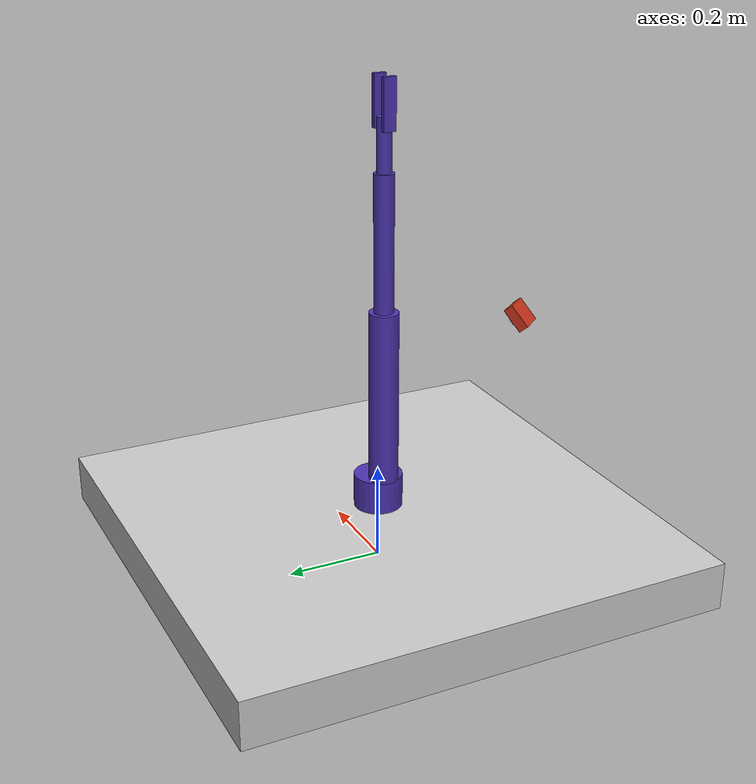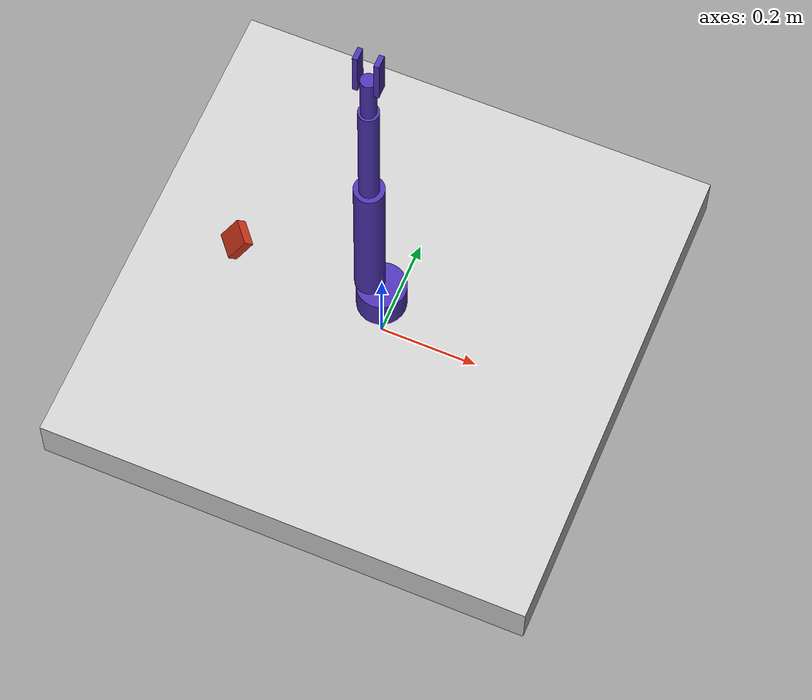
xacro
<?xml version="1.0"?>
<robot xmlns:xacro="http://www.ros.org/wiki/xacro" name="krowka">

<!-- FILES INCLUDED -->

    <xacro:include filename="0_utils/gazebo_ros_control.xacro"/>
    <xacro:include filename="1_base/base_link.xacro"/>
    <xacro:include filename="2_links/link_0.xacro"/>
    <xacro:include filename="2_links/link_1.xacro"/>
    <xacro:include filename="2_links/link_2.xacro"/>
    <xacro:include filename="2_links/link_3.xacro"/>
    <xacro:include filename="3_gripper/grip.xacro"/>
    <xacro:include filename="4_sensors/camera.xacro"/>

<!-- MODEL DEFINITION -->

    <xacro:base_link    name="base_link"/>

    <xacro:link_0   parent="base_link"
                    trans_x="0.000"
                    trans_y="0.000"
                    trans_z="0.120"
                    name="link_0"
                    low_limit="-3.14"
                    high_limit="3.14"
                    effort="10"
                    velocity="0.4"
                    damping="10"/>

    <xacro:link_1   parent="link_0"
                    trans_x="-0.025"
                    trans_y=" 0.000"
                    trans_z=" 0.070"
                    name="link_1"
                    low_limit="-1.9"
                    high_limit="2.0"
                    effort="10"
                    velocity="0.4"
                    damping="10"/>

    <xacro:link_2   parent="link_1"
                    trans_x="0.000"
                    trans_y="0.000"
                    trans_z="0.360"
                    name="link_2"
                    low_limit="-2.0"
                    high_limit="2.8"
                    effort="5"
                    velocity="0.4"
                    damping="5"/>

    <xacro:link_3   parent="link_2"
                    trans_x="0.000"
                    trans_y="0.000"
                    trans_z="0.2755"
                    name="link_3"
                    low_limit="-2.1"
                    high_limit="2.1"
                    effort="5"
                    velocity="0.4"
                    damping="3"/>

    <xacro:grip     parent="link_3"
                    trans_x="0.02"
                    trans_y="0.000"
                    trans_z="0.106"
                    name="grip_0"
                    low_limit="-0.2"
                    high_limit="0.5"
                    effort="10"
                    velocity="0.4"
                    damping="3"
                    axis="1"
                    rot_yaw="0.00"
                    no="0"/>

    <xacro:grip     parent="link_3"
                    trans_x="-0.02"
                    trans_y="0.000"
                    trans_z="0.106"
                    name="grip_1"
                    low_limit="-0.2"
                    high_limit="0.5"
                    effort="10"
                    velocity="0.4"
                    damping="3"
                    axis="-1"
                    rot_yaw="3.1416"
                    no="1"/>

    <xacro:camera_link  parent="link_0"
                    trans_x="-0.20"
                    trans_y="-0.20"
                    trans_z=" 0.450"
                    rot_roll="0.0"
                    rot_pitch="0.7"
                    rot_yaw="0.7"
                    name="camera1"
        />

</robot>

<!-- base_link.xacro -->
<robot xmlns:xacro="http://www.ros.org/wiki/xacro" name="krowka">

    <xacro:macro name="base_link" params="name">

        <!-- WORLD -->
        <link name="world"/>

        <joint name="fixed" type="fixed">
            <parent link="world"/>
            <child link="${name}"/>
        </joint>

        <!-- LINK -->
        <xacro:macro name="base_link_mesh">
            <origin rpy="0 0 0" xyz="0 0 0"/>
            <geometry>
                <mesh filename="package://krowka_model/urdf/krowka/mesh/stl/base_link.stl" scale="0.01 0.01 0.01"/>
            </geometry>
        </xacro:macro>

        <xacro:macro name="base_link_primitive">
            <origin rpy="0 0 0" xyz="0 0 0.06"/>
            <geometry>
                <box size="1 1 .1"/>
            </geometry>
        </xacro:macro>

        <xacro:macro name="base_link_color">
            <material name="base_link_color">
                <color rgba=".8 .8 .8 1"/>
            </material>
        </xacro:macro>

        <link name="${name}">
            <visual>
                <xacro:base_link_primitive/>
                <xacro:base_link_color/>
            </visual>

            <collision>
                <xacro:base_link_primitive/>
            </collision>

            <inertial>
                <origin rpy="0 0 0" xyz="0 0 0" />
                <mass value="1.070"/>
                <inertia ixx="0.009" ixy="0.000" ixz="-0.002" iyy="0.010" iyz="0.000" izz="0.005"/>
            </inertial>
        </link>
        <gazebo reference="${name}">
            <mu1> .2 </mu1>
            <mu2> .2 </mu2>
            <material> Gazebo/Blue </material>
            <selfCollide>False</selfCollide>
        </gazebo>

    </xacro:macro>
</robot>

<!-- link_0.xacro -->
<robot xmlns:xacro="http://www.ros.org/wiki/xacro" name="krowka">

    <xacro:macro name="link_0" params="parent trans_x trans_y trans_z name low_limit high_limit effort velocity damping">

        <!-- LINK -->
        <xacro:macro name="link_0_mesh">
            <origin rpy="0 0 0" xyz="0 0 0"/>
            <geometry>
                <mesh filename="package://krowka_model/urdf/krowka/mesh/stl/link_0.stl" scale="0.01 0.01 0.01"/>
            </geometry>
        </xacro:macro>

        <xacro:macro name="link_0_primitive">
            <origin rpy="0 0 0" xyz="0 0 0.035"/>
            <geometry>
                <cylinder radius="0.050" length="0.070"/>
            </geometry>
        </xacro:macro>

        <xacro:macro name="link_0_color">
            <material name="link_0_color">
                <color rgba=".3 .2 .7 1"/>
            </material>
        </xacro:macro>

        <link name="${name}">
            <visual>
                <xacro:link_0_primitive/>
                <xacro:link_0_color/>
            </visual>

            <collision>
                <xacro:link_0_primitive/>
            </collision>

            <inertial>
                <origin rpy="0 0 0" xyz="0 0 0" />
                <mass value="1.082"/>
                <inertia ixx="0.005" ixy="0.000" ixz="0.000" iyy="0.003" iyz="-0.001" izz="0.003"/>
            </inertial>
        </link>
        <gazebo reference="${name}">
            <mu1> .2 </mu1>
            <mu2> .2 </mu2>
            <material> Gazebo/Orange </material>
            <selfCollide>False</selfCollide>
        </gazebo>

        <!-- JOINT -->
        <joint name="${name}_joint" type="revolute">
            <parent link="${parent}"/>
            <child link="${name}"/>
            <origin rpy="0 0 0" xyz="${trans_x} ${trans_y} ${trans_z}"/>
            <axis xyz="0 0 1"/>
            <limit effort="${effort}" velocity="${velocity}" lower="${low_limit}" upper="${high_limit}"/>
            <dynamics damping="${damping}"/>
        </joint>
        <gazebo reference="${name}_joint">
            <stopCfm>0.8</stopCfm>
            <stopErp>0.5</stopErp>
            <provideFeedback>true</provideFeedback>
            <implicitSpringDamper>true</implicitSpringDamper>
            <fudgeFactor>0.0</fudgeFactor>
        </gazebo>

        <!-- TRANSMISSION -->
        <transmission name="${name}_transmission">
            <type>transmission_interface/SimpleTransmission</type>
            <joint name="${name}_joint">
                <hardwareInterface>EffortJointInterface</hardwareInterface>
            </joint>
            <actuator name="${name}_motor">
                <hardwareInterface>EffortJointInterface</hardwareInterface>
                <mechanicalReduction>1</mechanicalReduction>
            </actuator>
        </transmission>

    </xacro:macro>
</robot>

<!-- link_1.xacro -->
<robot xmlns:xacro="http://www.ros.org/wiki/xacro" name="krowka">

    <xacro:macro name="link_1" params="parent trans_x trans_y trans_z name low_limit high_limit effort velocity damping">

        <!-- LINK -->
        <xacro:macro name="link_1_mesh">
            <origin rpy="0 0 0" xyz="0 0 0"/>
            <geometry>
                <mesh filename="package://krowka_model/urdf/krowka/mesh/stl/link_1.stl" scale="0.01 0.01 0.01"/>
            </geometry>
        </xacro:macro>

        <xacro:macro name="link_1_primitive">
            <origin rpy="0 0 0" xyz="0 0 0.180"/>
            <geometry>
                <cylinder radius="0.030" length="0.360"/>
            </geometry>
        </xacro:macro>

        <xacro:macro name="link_1_color">
            <material name="link_1_color">
                <color rgba=".3 .2 .7 1"/>
            </material>
        </xacro:macro>

        <link name="${name}">
            <visual>
                <xacro:link_1_primitive/>
                <xacro:link_1_color/>
            </visual>

            <collision>
                <xacro:link_1_primitive/>
            </collision>

            <inertial>
                <origin rpy="0 0 0" xyz="0 0 0" />
                <mass value="1.234"/>
                <inertia ixx="0.014" ixy="0.000" ixz="0.000" iyy="0.013" iyz="-0.002" izz=".002"/>
            </inertial>
        </link>
        <gazebo reference="${name}">
            <mu1> .2 </mu1>
            <mu2> .2 </mu2>
            <material> Gazebo/Orange </material>
            <selfCollide>False</selfCollide>
        </gazebo>

        <!-- JOINT -->
        <joint name="${name}_joint" type="revolute">
            <parent link="${parent}"/>
            <child link="${name}"/>
            <origin rpy="0 0 0" xyz="${trans_x} ${trans_y} ${trans_z}"/>
            <axis xyz="0 1 0"/>
            <limit effort="${effort}" velocity="${velocity}" lower="${low_limit}" upper="${high_limit}"/>
            <dynamics damping="${damping}"/>
        </joint>
        <gazebo reference="${name}_joint">
            <stopCfm>0.8</stopCfm>
            <stopErp>0.5</stopErp>
            <provideFeedback>true</provideFeedback>
            <implicitSpringDamper>true</implicitSpringDamper>
            <fudgeFactor>0.0</fudgeFactor>
        </gazebo>

        <!-- TRANSMISSION -->
        <transmission name="${name}_transmission">
            <type>transmission_interface/SimpleTransmission</type>
            <joint name="${name}_joint">
                <hardwareInterface>EffortJointInterface</hardwareInterface>
            </joint>
            <actuator name="${name}_motor">
                <hardwareInterface>EffortJointInterface</hardwareInterface>
                <mechanicalReduction>1</mechanicalReduction>
            </actuator>
        </transmission>

    </xacro:macro>
</robot>

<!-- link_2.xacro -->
<robot xmlns:xacro="http://www.ros.org/wiki/xacro" name="krowka">

    <xacro:macro name="link_2" params="parent trans_x trans_y trans_z name low_limit high_limit effort velocity damping">

        <!-- LINK -->
        <xacro:macro name="link_2_mesh">
            <origin rpy="0 0 3.1416" xyz="0 0 0"/>
            <geometry>
                <mesh filename="package://krowka_model/urdf/krowka/mesh/stl/link_2.stl" scale="0.01 0.01 0.01"/>
            </geometry>
        </xacro:macro>

        <xacro:macro name="link_2_primitive">
            <origin rpy="0 0 0" xyz="0 0 0.137525"/>
            <geometry>
                <cylinder radius="0.020" length="0.2755"/>
            </geometry>
        </xacro:macro>

        <xacro:macro name="link_2_color">
            <material name="link_2_color">
                <color rgba=".3 .2 .7 1"/>
            </material>
        </xacro:macro>

        <link name="${name}">
            <visual>
                <xacro:link_2_primitive/>
                <xacro:link_2_color/>
            </visual>

            <collision>
                <xacro:link_2_primitive/>
            </collision>

            <inertial>
                <origin rpy="0 0 3.1416" xyz="0 0 0" />
                <mass value="0.638"/>
                <inertia ixx="0.005" ixy="0.000" ixz="-0.001" iyy="0.005" iyz="0.000" izz="0.001"/>
            </inertial>
        </link>
        <gazebo reference="${name}">
            <mu1> .2 </mu1>
            <mu2> .2 </mu2>
            <material> Gazebo/Orange </material>
            <selfCollide>False</selfCollide>
        </gazebo>

        <!-- JOINT -->
        <joint name="${name}_joint" type="revolute">
            <parent link="${parent}"/>
            <child link="${name}"/>
            <origin rpy="0 0 0" xyz="${trans_x} ${trans_y} ${trans_z}"/>
            <axis xyz="0 1 0"/>
            <limit effort="${effort}" velocity="${velocity}" lower="${low_limit}" upper="${high_limit}"/>
            <dynamics damping="${damping}"/>
        </joint>
        <gazebo reference="${name}_joint">
            <stopCfm>0.8</stopCfm>
            <stopErp>0.5</stopErp>
            <provideFeedback>true</provideFeedback>
            <implicitSpringDamper>true</implicitSpringDamper>
            <fudgeFactor>0.0</fudgeFactor>
        </gazebo>

        <!-- TRANSMISSION -->
        <transmission name="${name}_transmission">
            <type>transmission_interface/SimpleTransmission</type>
            <joint name="${name}_joint">
                <hardwareInterface>EffortJointInterface</hardwareInterface>
            </joint>
            <actuator name="${name}_motor">
                <hardwareInterface>EffortJointInterface</hardwareInterface>
                <mechanicalReduction>1</mechanicalReduction>
            </actuator>
        </transmission>

    </xacro:macro>
</robot>

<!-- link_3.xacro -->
<robot xmlns:xacro="http://www.ros.org/wiki/xacro" name="zortrax">

    <xacro:macro name="link_3" params="parent trans_x trans_y trans_z name low_limit high_limit effort velocity damping">

        <!-- LINK -->
        <xacro:macro name="link_3_mesh">
            <origin rpy="0 0 0" xyz="0 0 0"/>
            <geometry>
                <mesh filename="package://krowka_model/urdf/zortrax/mesh/stl/link_3.stl" scale="0.01 0.01 0.01"/>
            </geometry>
        </xacro:macro>

        <xacro:macro name="link_3_primitive">
            <origin rpy="0 0 0" xyz="0 0 0.053"/>
            <geometry>
                <cylinder radius="0.015" length="0.106"/>
            </geometry>
        </xacro:macro>

        <xacro:macro name="link_3_color">
            <material name="link_3_color">
                <color rgba=".3 .2 .7 1"/>
            </material>
        </xacro:macro>

        <link name="${name}">
            <visual>
                <xacro:link_3_primitive/>
                <xacro:link_3_color/>
            </visual>

            <collision>
                <xacro:link_3_primitive/>
            </collision>

            <inertial>
                <origin rpy="0 0 0" xyz="0 0 0" />
                <mass value="0.046"/>
                <inertia ixx="0.000016" ixy="0.000000" ixz="0.000000" iyy="0.000016" iyz="0.000" izz="0.000009"/>
            </inertial>
        </link>
        <gazebo reference="${name}">
            <mu1> .2 </mu1>
            <mu2> .2 </mu2>
            <material> Gazebo/Orange </material>
            <selfCollide>False</selfCollide>
        </gazebo>

        <!-- JOINT -->
        <joint name="${name}_joint" type="revolute">
            <parent link="${parent}"/>
            <child link="${name}"/>
            <origin rpy="0 0 0" xyz="${trans_x} ${trans_y} ${trans_z}"/>
            <axis xyz="0 1 0"/>
            <limit effort="${effort}" velocity="${velocity}" lower="${low_limit}" upper="${high_limit}"/>
            <dynamics damping="${damping}"/>
        </joint>
        <gazebo reference="${name}_joint">
            <stopCfm>0.8</stopCfm>
            <stopErp>0.5</stopErp>
            <provideFeedback>true</provideFeedback>
            <implicitSpringDamper>true</implicitSpringDamper>
            <fudgeFactor>0.0</fudgeFactor>
        </gazebo>

        <!-- TRANSMISSION -->
        <transmission name="${name}_transmission">
            <type>transmission_interface/SimpleTransmission</type>
            <joint name="${name}_joint">
                <hardwareInterface>EffortJointInterface</hardwareInterface>
            </joint>
            <actuator name="${name}_motor">
                <hardwareInterface>EffortJointInterface</hardwareInterface>
                <mechanicalReduction>1</mechanicalReduction>
            </actuator>
        </transmission>

    </xacro:macro>
</robot>

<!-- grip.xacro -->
<robot xmlns:xacro="http://www.ros.org/wiki/xacro" name="krowka">

    <xacro:macro name="grip" params="parent trans_x trans_y trans_z name low_limit high_limit effort velocity damping rot_yaw axis no">

        <!-- LINK -->
        <xacro:macro name="grip_mesh">
            <origin rpy="0 ${rot_yaw} 0" xyz="0 0 0"/>
            <geometry>
                <mesh filename="package://krowka_model/urdf/krowka/mesh/stl/grip_${no}.stl" scale="0.01 0.01 0.01"/>
            </geometry>
        </xacro:macro>

        <xacro:macro name="grip_primitive">
            <origin rpy="0 0 0" xyz="0 0 0.025"/>
            <geometry>
                <box size="0.01 0.025 0.1"/>
            </geometry>
        </xacro:macro>

        <xacro:macro name="grip_color">
            <material name="grip_color">
                <color rgba=".3 .2 .7 1"/>
            </material>
        </xacro:macro>

        <link name="${name}">
            <visual>
                <xacro:grip_primitive/>
                <xacro:grip_color/>
            </visual>

            <collision>
                <xacro:grip_primitive/>
            </collision>

            <inertial>
                <origin rpy="0 0 0" xyz="0 0 0" />
                <mass value="0.017"/>
                <inertia ixx="0.000013" ixy="0.000" ixz="-0.000002" iyy="0.000013" iyz="0.000" izz="0.000002"/>
            </inertial>
        </link>
        <gazebo reference="${name}">
            <mu1> 1 </mu1>
            <mu2> 1 </mu2>
            <kp> 1160000 </kp>
            <kd> 1000 </kd>
            <material> Gazebo/White </material>
            <selfCollide>False</selfCollide>
        </gazebo>

        <!-- JOINT -->
        <joint name="${name}_joint" type="revolute">
            <parent link="${parent}"/>
            <child link="${name}"/>
            <origin rpy="0 0 0" xyz="${trans_x} ${trans_y} ${trans_z}"/>
            <axis xyz="0 ${axis} 0"/>
            <limit effort="${effort}" velocity="${velocity}" lower="${low_limit}" upper="${high_limit}"/>
            <dynamics damping="1" friction="5"/>
        </joint>
        <gazebo reference="${name}_joint">
            <provideFeedback>true</provideFeedback>
            <implicitSpringDamper>true</implicitSpringDamper>
            <fudgeFactor>0.0</fudgeFactor>
        </gazebo>

        <!-- TRANSMISSION -->
        <transmission name="${name}_transmission">
            <type>transmission_interface/SimpleTransmission</type>
            <joint name="${name}_joint">
                <hardwareInterface>EffortJointInterface</hardwareInterface>
            </joint>
            <actuator name="${name}_motor">
                <hardwareInterface>EffortJointInterface</hardwareInterface>
                <mechanicalReduction>1</mechanicalReduction>
            </actuator>
        </transmission>

    </xacro:macro>
</robot>

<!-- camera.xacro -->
<robot xmlns:xacro="http://www.ros.org/wiki/xacro" name="camera">

<!-- CAMERA PROPERTIES -->
    <xacro:property name="view_angle" value="1.57075"/>
    <xacro:property name="resolution_y" value="640"/>
    <xacro:property name="resolution_x" value="480"/>
    <xacro:property name="framerate" value="25"/>

<!-- DIMMENSIONS -->
    <xacro:property name="camera_x" value=".02"/>
    <xacro:property name="camera_y" value=".05"/>
    <xacro:property name="camera_z" value=".05"/>

    <xacro:property name="camera_lens_radius" value=".018"/>
    <xacro:property name="camera_lens_length" value=".01"/>

<!-- GEOMETRY -->
    <xacro:macro name="camera_geometry_1">
        <origin rpy="0 0 0" xyz="0 0 0" />
        <geometry>
            <box size="${camera_x} ${camera_y} ${camera_z}"/>
        </geometry>
    </xacro:macro>

    <xacro:macro name="camera_geometry_2">
        <origin rpy="0 0 0" xyz="0 0 0" />
        <geometry>
            <cylinder radius="${camera_lens_radius}" length="${camera_lens_length}"/>
        </geometry>
    </xacro:macro>

<!-- MATERIAL -->
    <xacro:macro name="camera_material_1">
        <material name="Red">
            <color rgba=".8 .2 .1 1"/>
        </material>
    </xacro:macro>

    <xacro:macro name="camera_material_2">
        <material name="Black">
            <color rgba="0 0 0 1"/>
        </material>
    </xacro:macro>

<!-- CAMERA GAZEBO PLUGIN -->
    <xacro:macro name="camera_plugin" params="name">
        <gazebo reference="${name}">
            <sensor type="camera" name="${name}">
                <update_rate> ${framerate} </update_rate>
                <camera name="{name}" >
                    <horizontal_fov> ${view_angle} </horizontal_fov>
                    <image>
                        <width> ${resolution_y} </width>
                        <height> ${resolution_x} </height>
                        <format>B8G8R8</format>
                    </image>
                    <clip>
                        <near>0.02</near>
                        <far>300</far>
                    </clip>
                    <noise>
                        <type>gaussian</type>
                        <mean>0.0</mean>
                        <stddev>0.007</stddev>
                    </noise>
                </camera>

                <plugin name="camera_controller" filename="libgazebo_ros_camera.so">
                    <alwaysOn>True</alwaysOn>
                    <updateRate>0.0</updateRate>
                    <cameraName>${name}</cameraName>
                    <imageTopicName>image</imageTopicName>
                    <cameraInfoTopicName>camera_info</cameraInfoTopicName>
                    <frameName>/${name}_lens</frameName>
                    <hackBaseline>0.07</hackBaseline>
                    <distortionK1>0.0</distortionK1>
                    <distortionK2>0.0</distortionK2>
                    <distortionK3>0.0</distortionK3>
                    <distortionT1>0.0</distortionT1>
                    <distortionT2>0.0</distortionT2>
                </plugin>

            </sensor>
        </gazebo>
    </xacro:macro>

<!-- LINK -->
    <xacro:macro name="camera_link" params="parent trans_x trans_y trans_z rot_roll rot_pitch rot_yaw name">

        <!--CAMERA BOARD -->

        <link name="${name}">
            <visual>
                <xacro:camera_geometry_1/>
                <xacro:camera_material_1/>
            </visual>
            <collision>
                <xacro:camera_geometry_1/>
            </collision>
            <inertial>
                 <mass value=".001"/>
                 <inertia ixx=".00000003" ixy="0" ixz="0" iyy=".00000003" iyz="0" izz=".00000003"/>
            </inertial>
        </link>

        <joint name="${name}_joint" type="fixed">
            <parent link="${parent}"/>
            <child link="${name}"/>
            <origin rpy="${rot_roll} ${rot_pitch} ${rot_yaw}" xyz="${trans_x} ${trans_y} ${trans_z}"/>
        </joint>

        <gazebo reference="${name}">
            <mu1> .2 </mu1>
            <mu2> .2 </mu2>
            <material> Gazebo/Red </material>
            <selfCollide> false </selfCollide>
        </gazebo>

        <!--CAMERA LENS -->

        <link name="${name}_lens">
            <visual>
                <xacro:camera_geometry_2/>
                <xacro:camera_material_2/>
            </visual>
            <collision>
                <xacro:camera_geometry_2/>
            </collision>
            <inertial>
                 <mass value=".001"/>
                 <inertia ixx=".000003" ixy="0" ixz="0" iyy=".000003" iyz="0" izz=".000003"/>
            </inertial>
        </link>

        <joint name="${name}_lens_joint" type="fixed">
            <parent link="${name}"/>
            <child link="${name}_lens"/>
            <origin rpy="-1.57075 0 -1.57075" xyz="${camera_x/2} 0 0"/>
        </joint>

        <gazebo reference="${name}_lens">
            <mu1> .2 </mu1>
            <mu2> .2 </mu2>
            <material> Gazebo/Black </material>
            <selfCollide> false </selfCollide>
        </gazebo>

        <xacro:camera_plugin name="${name}"/>

    </xacro:macro>
</robot>
